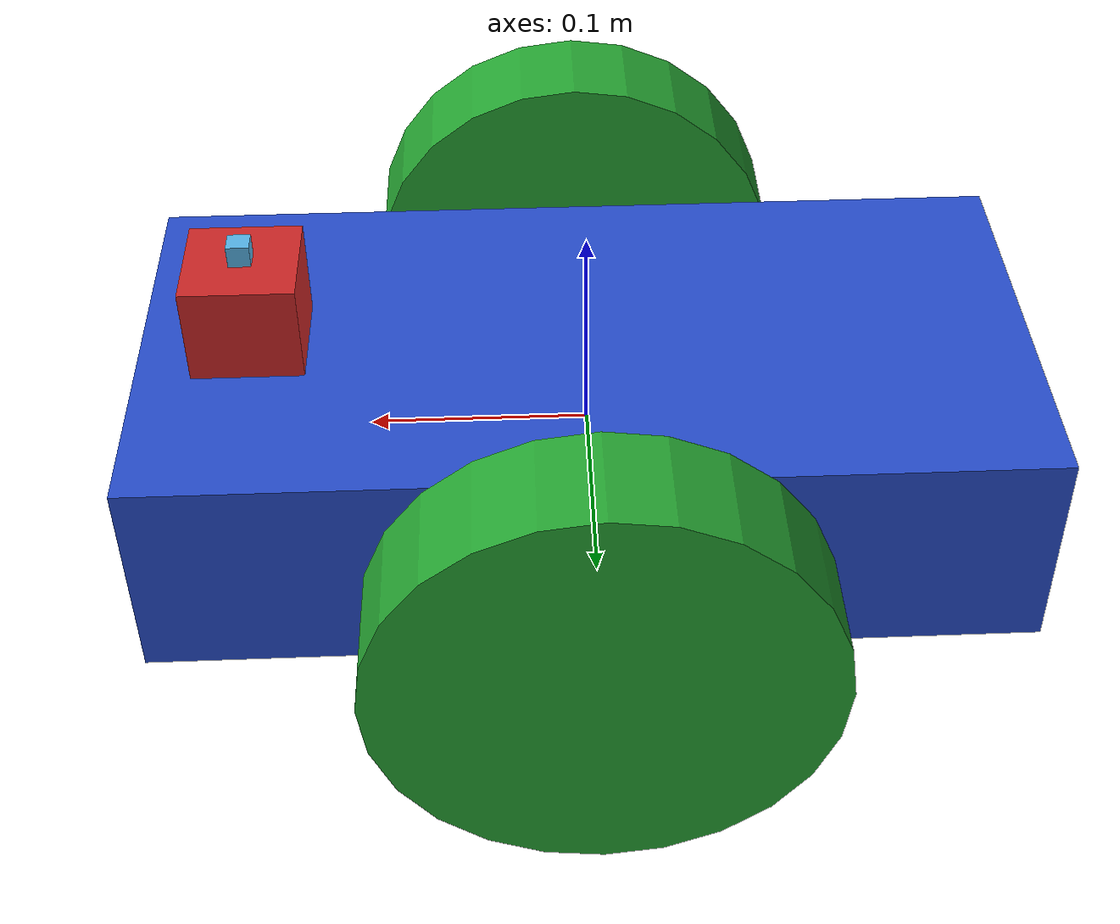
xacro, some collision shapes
<?xml version='1.0'?>

<robot name="explore_bot" xmlns:xacro="http://www.ros.org/wiki/xacro">
<xacro:include filename="$(find explore_bot)/urdf/explore_bot.gazebo" />
<xacro:include filename="$(find explore_bot)/urdf/explore_materials.xacro" />

  <link name="robot_footprint"></link>

  <joint name="robot_footprint_joint" type="fixed">
    <origin xyz="0 0 0" rpy="0 0 0" />
    <parent link="robot_footprint"/>
    <child link="chassis" />
  </joint>

  <!-- chassis link -->
  <link name='chassis'>
    <pose>0 0 0.1 0 0 0</pose>

    <inertial>
      <mass value="15.0"/>
      <origin xyz="0.0 0 0" rpy=" 0 0 0"/>
      <inertia
          ixx="0.1" ixy="0" ixz="0"
          iyy="0.1" iyz="0"
          izz="0.1"
      />
    </inertial>

    <collision name='collision'>
      <origin xyz="0 0 0" rpy=" 0 0 0"/>
      <geometry>
        <box size=".4 .2 .1"/>
      </geometry>
    </collision>

    <visual name='chassis_visual'>
      <origin xyz="0 0 0" rpy=" 0 0 0"/>
      <geometry>
        <box size=".4 .2 .1"/>
      </geometry>
      <material name="blue"/>
    </visual>

    <collision name='back_caster_collision'>
      <origin xyz="-0.15 0 -0.05" rpy=" 0 0 0"/>
      <geometry>
        <sphere radius="0.05"/>
      </geometry>
      <surface>
        <friction>
          <ode>
            <mu>0</mu>
            <mu2>0</mu2>
            <slip1>1.0</slip1>
            <slip2>1.0</slip2>
          </ode>
        </friction>
      </surface>
    </collision>

    <visual name='back_caster_visual'>
      <origin xyz="-0.15 0 -0.05" rpy=" 0 0 0"/>
      <geometry>
        <sphere radius="0.05"/>
      </geometry>
    </visual>

    <collision name='front_caster_collision'>
      <origin xyz="0.15 0 -0.05" rpy=" 0 0 0"/>
      <geometry>
        <sphere radius="0.05"/>
      </geometry>
      <surface>
        <friction>
          <ode>
            <mu>0</mu>
            <mu2>0</mu2>
            <slip1>1.0</slip1>
            <slip2>1.0</slip2>
          </ode>
        </friction>
      </surface>
    </collision>

    <visual name='front_caster_visual'>
      <origin xyz="0.15 0 -0.05" rpy=" 0 0 0"/>
      <geometry>
        <sphere radius="0.05"/>
      </geometry>
    </visual>
  </link>

  <!-- left Wheel link -->
  <link name="left_wheel">
    <pose>0 0 0 0 1.5707 1.5707</pose>

    <inertial>
      <mass value="5.0"/>
      <origin xyz="0 0 0" rpy=" 0 1.5707 1.5707"/>
      <inertia
          ixx="0.1" ixy="0" ixz="0"
          iyy="0.1" iyz="0"
          izz="0.1"
      />
    </inertial>

    <collision name="collision">
      <origin xyz="0 0 0" rpy=" 0 1.5707 1.5707"/>
      <geometry>
        <cylinder length="0.05" radius="0.1"/>
      </geometry>
    </collision>

    <visual name="visual">
      <origin xyz="0 0 0" rpy=" 0 1.5707 1.5707"/>
      <geometry>
        <cylinder length="0.05" radius="0.1"/>
      </geometry>
      <material name="green"/>
    </visual>
  </link>

  <!-- right Wheel link -->
  <link name="right_wheel">
    <pose>0 0 0 0 -1.5707 1.5707</pose>

    <inertial>
      <mass value="5.0"/>
      <origin xyz="0 0 0" rpy=" 0 -1.5707 1.5707"/>
      <inertia
          ixx="0.1" ixy="0" ixz="0"
          iyy="0.1" iyz="0"
          izz="0.1"
      />
    </inertial>

    <collision name="collision">
      <origin xyz="0 0 0" rpy=" 0 -1.5707 1.5707"/>
      <geometry>
        <cylinder length="0.05" radius="0.1"/>
      </geometry>
    </collision>

    <visual name="visual">
      <origin xyz="0 0 0" rpy=" 0 -1.5707 1.5707"/>
      <geometry>
        <cylinder length="0.05" radius="0.1"/>
      </geometry>
      <material name="green"/>
    </visual>
  </link>

  <!-- camera link -->
  <link name='camera_link'>
    <pose>0 0 0 0 0 0</pose>

    <inertial>
      <mass value="0.1"/>
      <origin xyz="0.0 0 0" rpy=" 0 0 0"/>
      <inertia
          ixx="1e-6" ixy="0" ixz="0"
          iyy="1e-6" iyz="0"
          izz="1e-6"
      />
    </inertial>

    <collision name='collision'>
      <origin xyz="0 0 0" rpy=" 0 0 0"/>
      <geometry>
        <box size=".05 .05 .05"/>
      </geometry>
    </collision>

    <visual name='chassis_visual'>
      <origin xyz="0 0 0" rpy=" 0 0 0"/>
      <geometry>
        <box size=".05 .05 .05"/>
      </geometry>
      <material name="red"/>
    </visual>
  </link>

  <!-- links for camera depth -->
  <link name='camera_depth_frame'>
    <pose>0 0 0 0 0 0</pose>

    <inertial>
      <mass value="0.1"/>
      <origin xyz="0.0 0 0" rpy="0 0 0"/>
      <inertia
          ixx="1e-6" ixy="0" ixz="0"
          iyy="1e-6" iyz="0"
          izz="1e-6"
      />
    </inertial>
  </link>

  <link name='camera_depth_optical_frame'>
    <pose>0 0 0 0 0 0</pose>

    <inertial>
      <mass value="0.1"/>
      <origin xyz="0.0 0 0" rpy=" 0 0 0"/>
      <inertia
          ixx="1e-6" ixy="0" ixz="0"
          iyy="1e-6" iyz="0"
          izz="1e-6"
      />
    </inertial>
  </link>

  <!-- links for camera rgb -->
  <link name='camera_rgb_frame'>
    <pose>0 0 0 0 0 0</pose>

    <inertial>
      <mass value="0.1"/>
      <origin xyz="0.0 0 0" rpy=" 0 0 0"/>
      <inertia
          ixx="1e-6" ixy="0" ixz="0"
          iyy="1e-6" iyz="0"
          izz="1e-6"
      />
    </inertial>
  </link>

  <link name='camera_rgb_optical_frame'>
    <pose>0 0 0 0 0 0</pose>

    <inertial>
      <mass value="0.1"/>
      <origin xyz="0.0 0 0" rpy=" 0 0 0"/>
      <inertia
          ixx="1e-6" ixy="0" ixz="0"
          iyy="1e-6" iyz="0"
          izz="1e-6"
      />
    </inertial>
  </link>

  <!-- laser rangefinder link -->
  <link name='hokuyo'>
    <pose>0 0 0 0 0 0</pose>

    <inertial>
      <mass value="0.1"/>
      <origin xyz="0.0 0 0" rpy=" 0 0 0"/>
      <inertia
          ixx="1e-6" ixy="0" ixz="0"
          iyy="1e-6" iyz="0"
          izz="1e-6"
      />
    </inertial>

    <collision name='collision'>
      <origin xyz="0 0 0" rpy=" 0 0 0"/>
      <geometry>
        <box size=".01 .01 .01"/>
      </geometry>
    </collision>

    <visual name='chassis_visual'>
      <origin xyz="0 0 0" rpy=" 0 0 0"/>
      <geometry>
        <mesh filename="package://explore_bot/meshes/hokuyo.dae"/>
      </geometry>
    </visual>
  </link>

  <!-- left wheel joint -->
  <joint type="continuous" name="left_wheel_hinge">
    <origin xyz="0 0.15 0" rpy="0 0 0"/>
    <child link="left_wheel"/>
    <parent link="chassis"/>
    <axis xyz="0 1 0" rpy="0 0 0"/>
    <limit effort="10000" velocity="1000"/>
    <joint_properties damping="1.0" friction="1.0"/>
  </joint>

  <!-- right wheel joint -->
  <joint type="continuous" name="right_wheel_hinge">
    <origin xyz="0 -0.15 0" rpy="0 0 0"/>
    <child link="right_wheel"/>
    <parent link="chassis"/>
    <axis xyz="0 1 0" rpy="0 0 0"/>
    <limit effort="10000" velocity="1000"/>
    <joint_properties damping="1.0" friction="1.0"/>
  </joint>

  <!-- camera joint -->
  <joint type="fixed" name="camera_joint">
    <origin xyz="0.15 0 0.07" rpy="0 0 0"/>
    <child link="camera_link"/>
    <parent link="chassis"/>
  </joint>

  <!-- camera depth orientation joints -->
  <joint type="fixed" name="camera_depth_frame_joint">
    <origin xyz="0.15 0 0.07" rpy="0 0 0"/>
    <child link="camera_depth_frame"/>
    <parent link="camera_link"/>
  </joint>

  <joint type="fixed" name="camera_depth_optical_frame_joint">
    <origin xyz="0.0 0 0.0" rpy="-1.57 0 -1.57"/>
    <child link="camera_depth_optical_frame"/>
    <parent link="camera_depth_frame"/>
  </joint>

  <!-- camera rgb orientation joints -->
  <joint type="fixed" name="camera_rgb_frame_joint">
    <origin xyz="0.15 0 0.07" rpy="0 0 0"/>
    <child link="camera_rgb_frame"/>
    <parent link="camera_link"/>
  </joint>

  <joint type="fixed" name="camera_rgb_optical_frame_joint">
    <origin xyz="0 0 0" rpy="-1.57 0 -1.57"/>
    <child link="camera_rgb_optical_frame"/>
    <parent link="camera_rgb_frame"/>
  </joint>

  <!-- laser rangefinder joint -->
  <joint type="fixed" name="hokuyo_joint">
    <origin xyz="0.15 0 0.1" rpy="0 0 0"/>
    <child link="hokuyo"/>
    <parent link="chassis"/>
    <axis xyz="0 1 0" rpy="0 0 0"/>
    <limit effort="10000" velocity="1000"/>
    <joint_properties damping="1.0" friction="1.0"/>
  </joint>

</robot>
